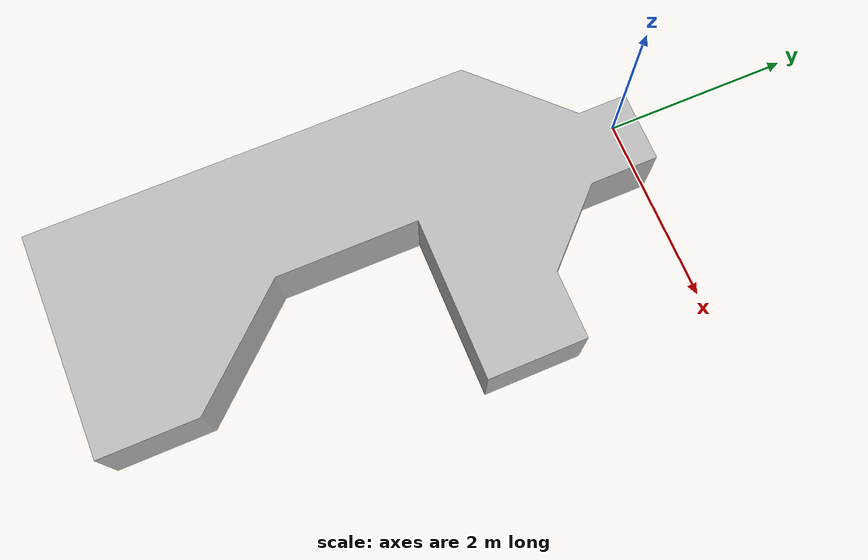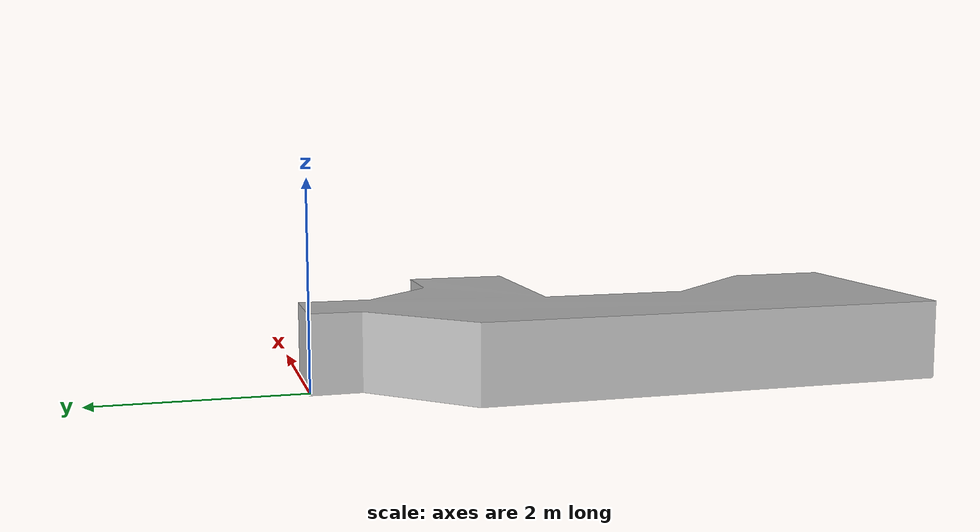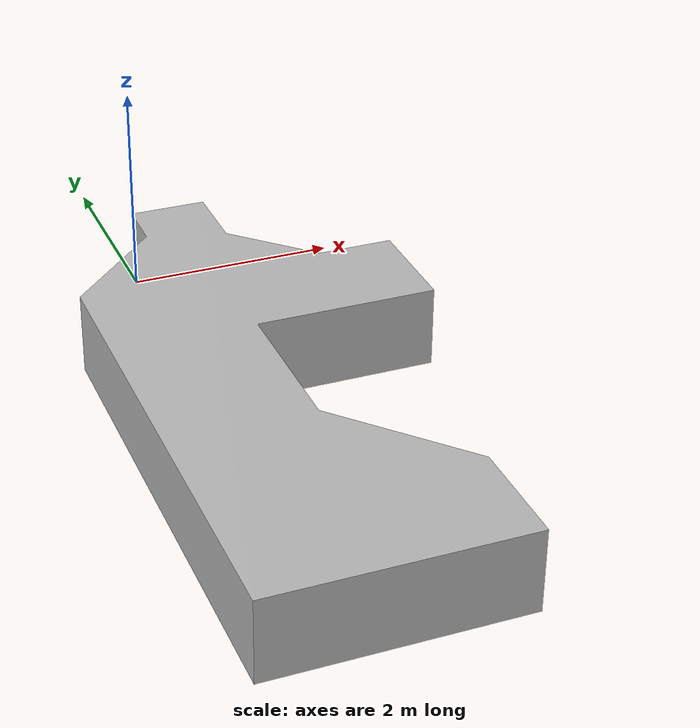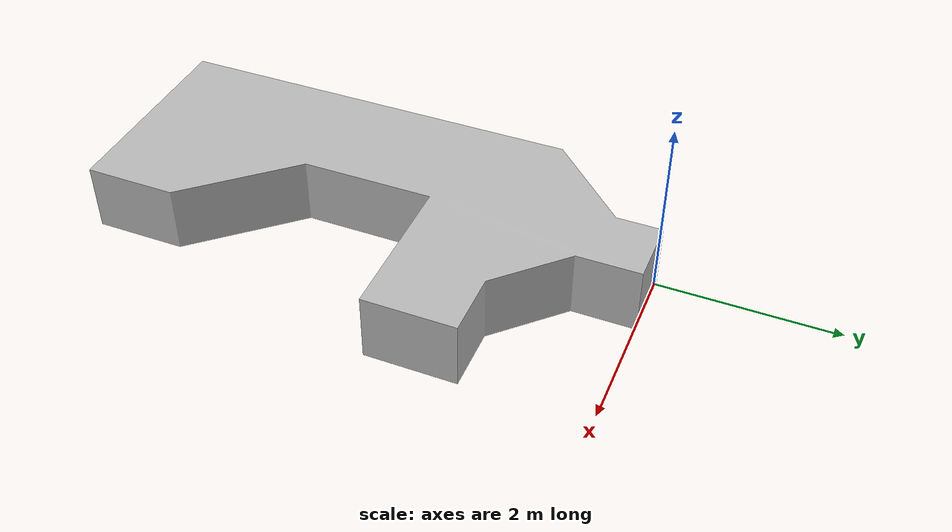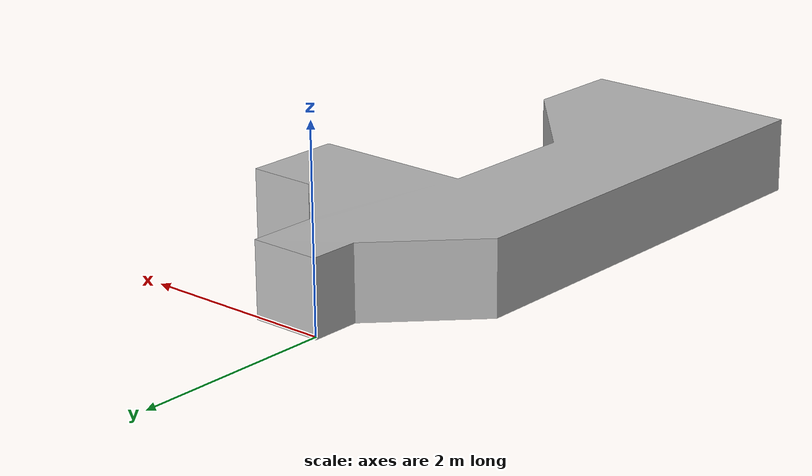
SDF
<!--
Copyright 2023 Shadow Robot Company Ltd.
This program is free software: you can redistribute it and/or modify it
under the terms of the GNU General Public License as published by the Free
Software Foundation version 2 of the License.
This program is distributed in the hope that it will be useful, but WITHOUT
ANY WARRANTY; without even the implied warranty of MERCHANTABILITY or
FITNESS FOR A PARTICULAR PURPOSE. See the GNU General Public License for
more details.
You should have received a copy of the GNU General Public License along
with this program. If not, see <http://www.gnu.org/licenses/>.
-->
<?xml version="1.0" ?>

<sdf version="1.4">
  <model name="filling_line">
    <static>true</static>
    <link name="link">
      <inertial>
        <mass>20</mass>
      </inertial>
      <collision name="collision">
        <pose>0.0 0.0 0.0 0 0.0 0.0</pose>
        <geometry>
          <mesh>
            <uri>model://filling_line/meshes/filling_line.stl</uri>
          </mesh>
        </geometry>
      </collision>
      <visual name="visual">
        <pose>0.0 0.0 0.0 0 0.0 0.0</pose>
        <geometry>
          <mesh>
            <uri>model://filling_line/meshes/filling_line.stl</uri>
          </mesh>
        </geometry>
      </visual>
    </link>
  </model>
</sdf>
